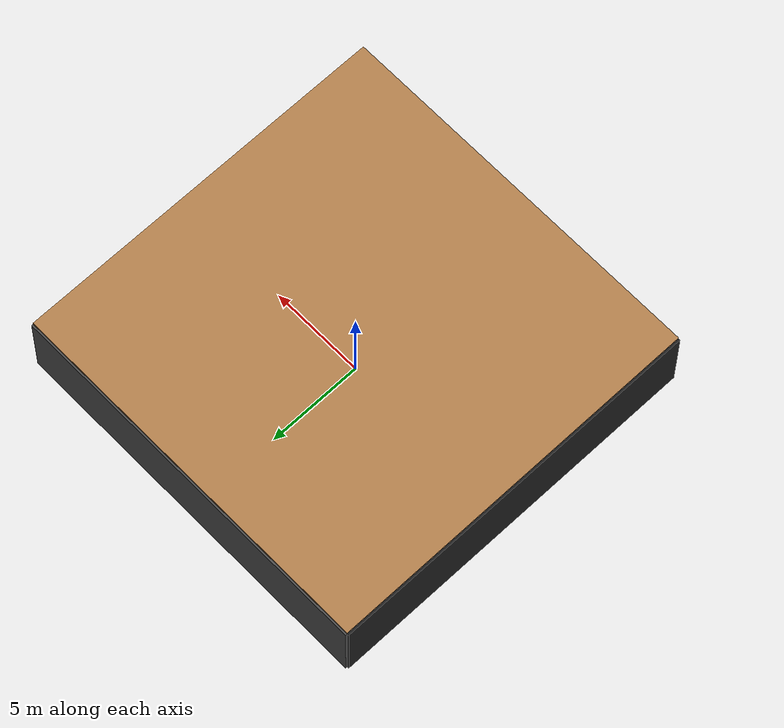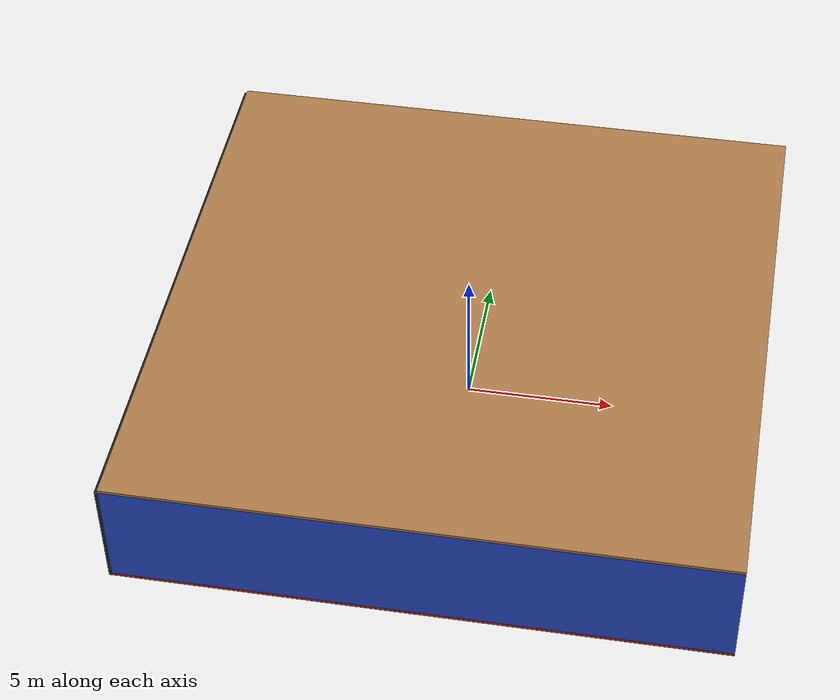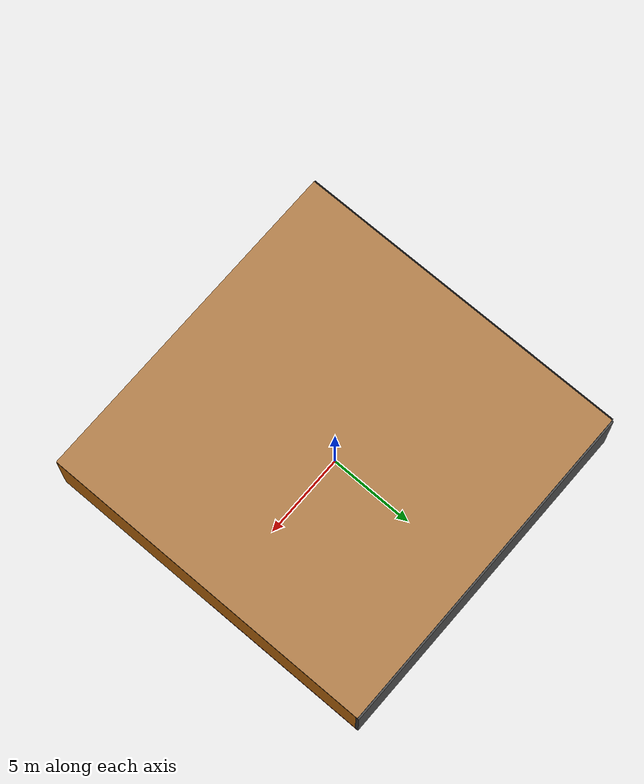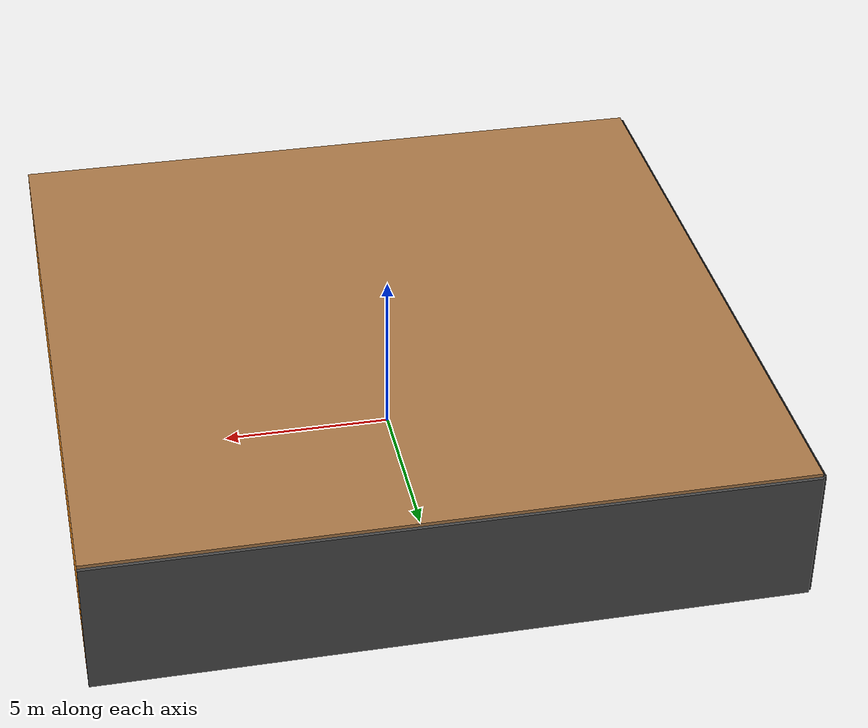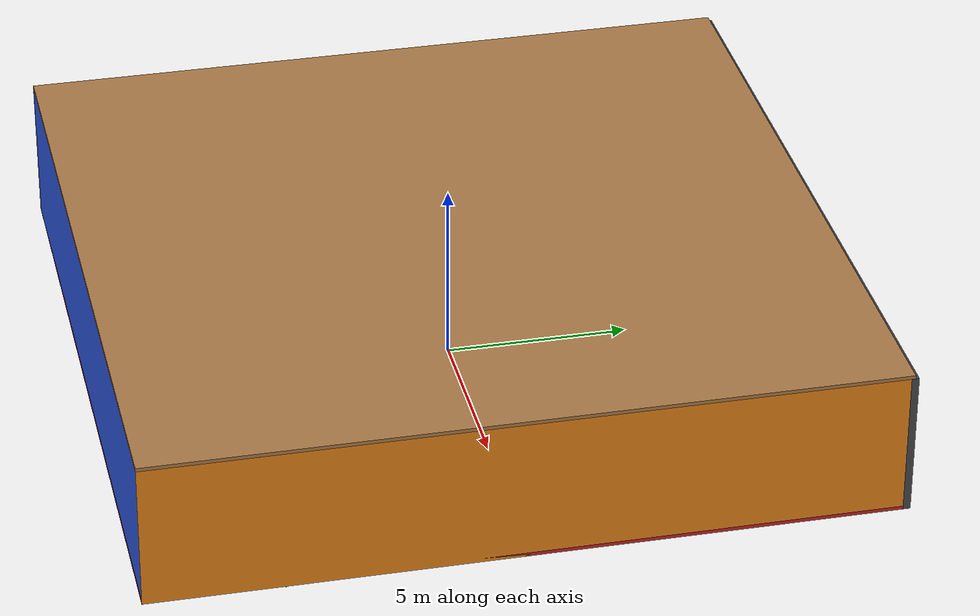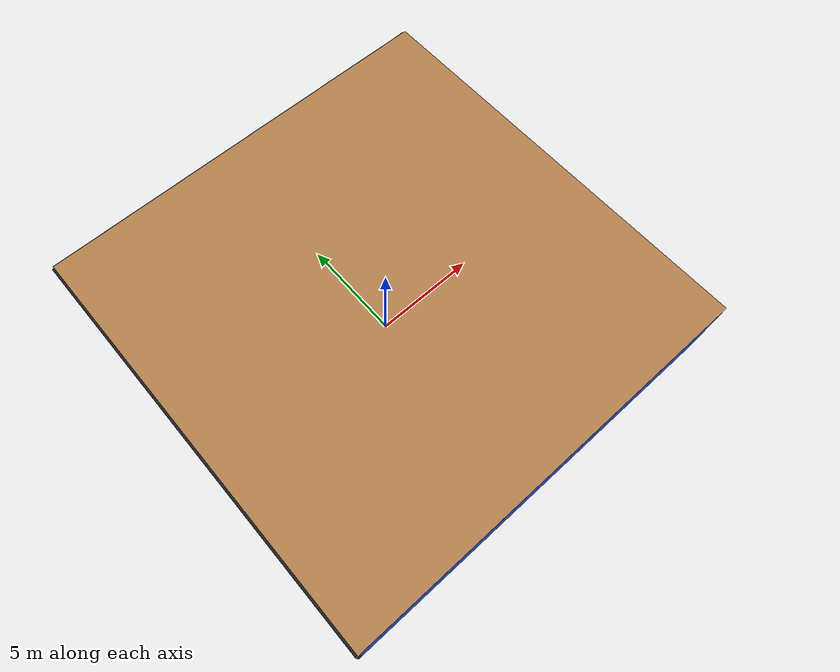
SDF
<sdf version="1.4">
 <world name="default">
  <physics type="ode">
   <max_step_size>0.001</max_step_size>
   <real_time_factor>1</real_time_factor>
   <real_time_update_rate>1000</real_time_update_rate>
   <gravity>0 0 -9.8</gravity>
  </physics>
  <scene><ambient>0.4 0.4 0.4 1</ambient><background>0.7 0.7 0.7 1</background><shadows>1</shadows></scene>
  <model name="Surrounding">
   <static>1</static>
   <link name="Ceiling">
    <collision name="Ceiling_Collision"><geometry><box><size>20 20 0.1</size></box></geometry></collision>
    <visual name="Ceiling_Visual">
     <geometry><box><size>20 20 0.1</size></box></geometry>
     <material>
      <script><uri>file://media/materials/scripts/gazebo.material</uri><name>Gazebo/WoodFloor</name></script>
     </material>
    </visual>
    <pose>0 0 4.05 0 0 0</pose>
   </link>
   <link name="Wall_South">
    <collision name="Wall_South_Collision">
     <geometry><box><size>20 0 4</size></box></geometry>
     <pose>0 0 2 0 -0 0</pose>
    </collision>
    <visual name="Wall_South_Visual">
     <pose>0 0 2 0 -0 0</pose>
     <geometry><box><size>20 0 4</size></box></geometry>
     <material>
      <script><uri>file://media/materials/scripts/gazebo.material</uri><name>Gazebo/Blue</name></script>
     </material>
    </visual>
    <velocity_decay><linear>0</linear><angular>0</angular></velocity_decay>
    <pose>0 -10 0 0 -0 0</pose>
   </link>
   <link name="Wall_East">
    <collision name="Wall_21_Collision">
     <geometry><box><size>20 0 4</size></box></geometry>
     <pose>0 0 2 0 -0 0</pose>
    </collision>
    <visual name="Wall_21_Visual">
     <pose>0 0 2 0 -0 0</pose>
     <geometry><box><size>20 0 4</size></box></geometry>
     <material>
      <script><uri>file://media/materials/scripts/gazebo.material</uri><name>Gazebo/Orange</name></script>
     </material>
    </visual>
    <velocity_decay><linear>0</linear><angular>0</angular></velocity_decay>
    <pose>10 0 0 0 -0 1.5708</pose>
   </link>
   <link name="Wall_North">
    <collision name="Wall_22_Collision">
     <geometry><box><size>20 0.2 4</size></box></geometry>
     <pose>0 0 2 0 -0 0</pose>
    </collision>
    <visual name="Wall_22_Visual">
     <pose>0 0 2 0 -0 0</pose>
     <geometry><box><size>20 0.2 4</size></box></geometry>
     <material>
      <script><uri>file://media/materials/scripts/gazebo.material</uri><name>Gazebo/DarkGrey</name></script>
     </material>
    </visual>
    <velocity_decay><linear>0</linear><angular>0</angular></velocity_decay>
    <pose>0 10 0 0 -0 0</pose>
   </link>
   <link name="Wall_West">
    <collision name="Wall_23_Collision">
     <geometry><box><size>20 0.2 4</size></box></geometry>
     <pose>0 0 2 0 -0 0</pose>
    </collision>
    <visual name="Wall_23_Visual">
     <pose>0 0 2 0 -0 0</pose>
     <geometry><box><size>20 0.2 4</size></box></geometry>
     <material>
      <script><uri>file://media/materials/scripts/gazebo.material</uri><name>Gazebo/Black</name></script>
     </material>
    </visual>
    <velocity_decay><linear>0</linear><angular>0</angular></velocity_decay>
    <pose>-10 0 0 0 0 -1.5708</pose>
   </link>
   <link name="Ground_link">
    <collision name="collision">
     <pose>0 0 .05 0 -0 0</pose>
     <geometry><box><size>20 20 0.1</size></box></geometry>
    </collision>
    <visual name="visual">
     <pose>0 0 .05 0 -0 0</pose>
     <geometry><box><size>20 20 0.1</size></box></geometry>
     <material>
      <script><uri>file://media/materials/scripts/gazebo.material</uri><name>Gazebo/Red</name></script>
     </material>
    </visual>
   </link>
   <static>1</static>
  </model>
  <spherical_coordinates>
   <surface_model>EARTH_WGS84</surface_model>
   <latitude_deg>0</latitude_deg>
   <longitude_deg>0</longitude_deg>
   <elevation>0</elevation>
   <heading_deg>0</heading_deg>
  </spherical_coordinates>
  <light name="lightball_0" type="diffuse">
   <diffuse>0.8 0.8 0.8 1</diffuse>
   <specular>0.2 0.2 0.2 1</specular>
   <attenuation>
    <range>100</range>
    <constant>0.7</constant>
    <linear>0.01</linear>
    <quadratic>0.001</quadratic>
   </attenuation>
   <direction>-0.5 0.1 -0.9</direction>
   <pose>-0.214414283674 5.17195428512 1.67020437657 0 0 0</pose>
  </light>
  <light name="lightball_1" type="diffuse">
   <diffuse>0.8 0.8 0.8 1</diffuse>
   <specular>0.2 0.2 0.2 1</specular>
   <attenuation>
    <range>100</range>
    <constant>0.7</constant>
    <linear>0.01</linear>
    <quadratic>0.001</quadratic>
   </attenuation>
   <direction>-0.5 0.1 -0.9</direction>
   <pose>3.31927515725 0.861083448113 3.54040568212 0 0 0</pose>
  </light>
  <light name="lightball_2" type="diffuse">
   <diffuse>0.8 0.8 0.8 1</diffuse>
   <specular>0.2 0.2 0.2 1</specular>
   <attenuation>
    <range>100</range>
    <constant>0.7</constant>
    <linear>0.01</linear>
    <quadratic>0.001</quadratic>
   </attenuation>
   <direction>-0.5 0.1 -0.9</direction>
   <pose>4.47503132208 1.5937745179 1.27928668624 0 0 0</pose>
  </light>
  <light name="lightball_3" type="diffuse">
   <diffuse>0.8 0.8 0.8 1</diffuse>
   <specular>0.2 0.2 0.2 1</specular>
   <attenuation>
    <range>100</range>
    <constant>0.7</constant>
    <linear>0.01</linear>
    <quadratic>0.001</quadratic>
   </attenuation>
   <direction>-0.5 0.1 -0.9</direction>
   <pose>-1.01576601872 4.48814140585 3.15179310358 0 0 0</pose>
  </light>
  <light name="lightball_4" type="diffuse">
   <diffuse>0.8 0.8 0.8 1</diffuse>
   <specular>0.2 0.2 0.2 1</specular>
   <attenuation>
    <range>100</range>
    <constant>0.7</constant>
    <linear>0.01</linear>
    <quadratic>0.001</quadratic>
   </attenuation>
   <direction>-0.5 0.1 -0.9</direction>
   <pose>-5.95229937816 -6.19832714674 3.14249844482 0 0 0</pose>
  </light>
  <light name="lightball_5" type="diffuse">
   <diffuse>0.8 0.8 0.8 1</diffuse>
   <specular>0.2 0.2 0.2 1</specular>
   <attenuation>
    <range>100</range>
    <constant>0.7</constant>
    <linear>0.01</linear>
    <quadratic>0.001</quadratic>
   </attenuation>
   <direction>-0.5 0.1 -0.9</direction>
   <pose>9.50371897226 3.86306515236 3.87303906417 0 0 0</pose>
  </light>
  <light name="lightball_6" type="diffuse">
   <diffuse>0.8 0.8 0.8 1</diffuse>
   <specular>0.2 0.2 0.2 1</specular>
   <attenuation>
    <range>100</range>
    <constant>0.7</constant>
    <linear>0.01</linear>
    <quadratic>0.001</quadratic>
   </attenuation>
   <direction>-0.5 0.1 -0.9</direction>
   <pose>-0.718975964407 9.41170265719 1.2328996415 0 0 0</pose>
  </light>
  <light name="lightball_7" type="diffuse">
   <diffuse>0.8 0.8 0.8 1</diffuse>
   <specular>0.2 0.2 0.2 1</specular>
   <attenuation>
    <range>100</range>
    <constant>0.7</constant>
    <linear>0.01</linear>
    <quadratic>0.001</quadratic>
   </attenuation>
   <direction>-0.5 0.1 -0.9</direction>
   <pose>1.96439593247 4.80362538048 0.695319734818 0 0 0</pose>
  </light>
  <light name="lightball_8" type="diffuse">
   <diffuse>0.8 0.8 0.8 1</diffuse>
   <specular>0.2 0.2 0.2 1</specular>
   <attenuation>
    <range>100</range>
    <constant>0.7</constant>
    <linear>0.01</linear>
    <quadratic>0.001</quadratic>
   </attenuation>
   <direction>-0.5 0.1 -0.9</direction>
   <pose>-2.57623118128 2.74009937955 0.925231410604 0 0 0</pose>
  </light>
  <include>
   <uri>model://construction_cone</uri>
   <pose>-7.4382940566 -7.07009919965 0 0 0 2.35121326591</pose>
  </include>
  <include><uri>model://cabinet</uri><pose>-7.10239535886 -3.7144037364 0 0 0 1.28734614238</pose></include>
  <include><uri>model://cabinet</uri><pose>-6.96416452628 7.64255149538 0 0 0 0.958033533854</pose></include>
  <include>
   <uri>model://textured_shapes</uri>
   <pose>-4.34770725939 2.12115791959 0 0 0 1.04969073387</pose>
  </include>
  <include>
   <uri>model://robocup_3Dsim_goal</uri>
   <pose>5.25937338655 1.08509113227 0 0 0 1.90756181428</pose>
  </include>
  <include>
   <uri>model://textured_shapes</uri>
   <pose>7.62407460038 -5.09344807766 0 0 0 0.746683853103</pose>
  </include>
  <include>
   <uri>model://construction_cone</uri>
   <pose>7.02095108934 -1.02234655823 0 0 0 1.26103622007</pose>
  </include>
 </world>
</sdf>

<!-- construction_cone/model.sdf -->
<sdf version="1.5">
  <model name="Construction Cone">
    <link name="link">
      <collision name="collision">
        <geometry>
          <mesh>
            <scale>10 10 10</scale>
            <uri>file://isr-testbed/construction_cone/meshes/construction_cone.dae</uri>
          </mesh>
        </geometry>
      </collision>
      <visual name="visual">
        <geometry>
          <mesh>
            <scale>10 10 10</scale>
            <uri>file://isr-testbed/construction_cone/meshes/construction_cone.dae</uri>
          </mesh>
        </geometry>
      </visual>
    </link>
  </model>
</sdf>

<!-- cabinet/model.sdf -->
<sdf version="1.5">
  <model name="cabinet">
    <static>true</static>
    <link name="cabinet_bottom_plate">
      <inertial>
        <pose>0 0 -1 0 0 0</pose>
        <inertia>
          <ixx>2.050000</ixx>
          <ixy>0</ixy>
          <ixz>0</ixz>
          <iyy>2.050000</iyy>
          <iyz>0</iyz>
          <izz>2.050000</izz>
        </inertia>
        <mass>25.000000</mass>
      </inertial>
      <collision name="cabinet_bottom_plate_geom">
        <pose>0 0 0.010000 0 0 0</pose>
        <geometry>
          <box>
            <size>0.450000 0.450000 0.020000</size>
          </box>
        </geometry>
      </collision>
      <visual name="cabinet_bottom_plate_geom_visual">
        <pose>0 0 0.010000 0 0 0</pose>
        <geometry>
          <box>
            <size>0.450000 0.450000 0.020000</size>
          </box>
        </geometry>
        <material>
          <script>
            <uri>model://media/materials/scripts/gazebo.material</uri>
            <name>Gazebo/Wood</name>
          </script>
        </material>
      </visual>
      <collision name="cabinet_bottom_plate_geom_cabinet_back_plate">
        <pose>0.235000 0 0.510000 0 0 0</pose>
        <geometry>
          <box>
            <size>0.020000 0.450000 1.020000</size>
          </box>
        </geometry>
      </collision>
      <visual name="cabinet_bottom_plate_geom_cabinet_back_plate_visual">
        <pose>0.235000 0 0.510000 0 0 0</pose>
        <geometry>
          <box>
            <size>0.020000 0.450000 1.020000</size>
          </box>
        </geometry>
        <material>
          <script>
            <uri>model://media/materials/scripts/gazebo.material</uri>
            <name>Gazebo/Wood</name>
          </script>
        </material>
      </visual>
      <collision name="cabinet_bottom_plate_geom_cabinet_left_plate">
        <pose>0 0.235000 0.510000 0 0 0</pose>
        <geometry>
          <box>
            <size>0.450000 0.020000 1.020000</size>
          </box>
        </geometry>
      </collision>
      <visual name="cabinet_bottom_plate_geom_cabinet_left_plate_visual">
        <pose>0 0.235000 0.510000 0 0 0</pose>
        <geometry>
          <box>
            <size>0.450000 0.020000 1.020000</size>
          </box>
        </geometry>
        <material>
          <script>
            <uri>model://media/materials/scripts/gazebo.material</uri>
            <name>Gazebo/Wood</name>
          </script>
        </material>
      </visual>
      <collision name="cabinet_bottom_plate_geom_cabinet_middle_plate">
        <pose>0 0 0.510000 0 0 0</pose>
        <geometry>
          <box>
            <size>0.450000 0.450000 0.020000</size>
          </box>
        </geometry>
      </collision>
      <visual name="cabinet_bottom_plate_geom_cabinet_middle_plate_visual">
        <pose>0 0 0.510000 0 0 0</pose>
        <geometry>
          <box>
            <size>0.450000 0.450000 0.020000</size>
          </box>
        </geometry>
        <material>
          <script>
            <uri>model://media/materials/scripts/gazebo.material</uri>
            <name>Gazebo/Wood</name>
          </script>
        </material>
      </visual>
      <collision name="cabinet_bottom_plate_geom_cabinet_right_plate">
        <pose>0 -0.235000 0.510000 0 0 0</pose>
        <geometry>
          <box>
            <size>0.450000 0.020000 1.020000</size>
          </box>
        </geometry>
      </collision>
      <visual name="cabinet_bottom_plate_geom_cabinet_right_plate_visual">
        <pose>0 -0.235000 0.510000 0 0 0</pose>
        <geometry>
          <box>
            <size>0.450000 0.020000 1.020000</size>
          </box>
        </geometry>
        <material>
          <script>
            <uri>model://media/materials/scripts/gazebo.material</uri>
            <name>Gazebo/Wood</name>
          </script>
        </material>
      </visual>
      <collision name="cabinet_bottom_plate_geom_cabinet_top_plate">
        <pose>0 0 1.010000 0 0 0</pose>
        <geometry>
          <box>
            <size>0.450000 0.450000 0.020000</size>
          </box>
        </geometry>
      </collision>
      <visual name="cabinet_bottom_plate_geom_cabinet_top_plate_visual">
        <pose>0 0 1.010000 0 0 0</pose>
        <geometry>
          <box>
            <size>0.450000 0.450000 0.020000</size>
          </box>
        </geometry>
        <material>
          <script>
            <uri>model://media/materials/scripts/gazebo.material</uri>
            <name>Gazebo/Wood</name>
          </script>
        </material>
      </visual>
    </link>
  </model>
</sdf>

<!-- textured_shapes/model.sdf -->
<sdf version="1.6">
  <model name="textured_shapes">
    <pose>0 0 0.5 0 0 0</pose>
    <link name="box">
      <pose>0 -1.5 0 0 0 0</pose>
      <collision name="collision">
        <geometry>
          <box>
            <size>1 1 1</size>
          </box>
        </geometry>
      </collision>
      <visual name="visual">
        <geometry>
          <box>
            <size>1 1 1</size>
          </box>
        </geometry>
        <material>
          <script>
            <uri>model://../model_source/models/textured_shapes/materials/scripts</uri>
            <uri>model://../model_source/models/textured_shapes/materials/textures</uri>
            <name>TexturedShape/Squares</name>
          </script>
        </material>
      </visual>
    </link>
    <link name="sphere">
      <collision name="collision">
        <geometry>
          <sphere>
            <radius>0.5</radius>
          </sphere>
        </geometry>
      </collision>
      <visual name="visual">
        <geometry>
          <sphere>
            <radius>0.5</radius>
          </sphere>
        </geometry>
        <material>
          <script>
            <uri>model://../model_source/models/textured_shapes/materials/scripts</uri>
            <uri>model://../model_source/models/textured_shapes/materials/textures</uri>
            <name>TexturedShape/Squares</name>
          </script>
        </material>
      </visual>
    </link>
    <link name="cylinder">
      <pose>0 1.5 0 0 0 0</pose>
      <collision name="collision">
        <geometry>
          <cylinder>
            <radius>0.5</radius>
            <length>1</length>
          </cylinder>
        </geometry>
      </collision>
      <visual name="visual">
        <geometry>
          <cylinder>
            <radius>0.5</radius>
            <length>1</length>
          </cylinder>
        </geometry>
        <material>
          <script>
            <uri>model://../model_source/models/textured_shapes/materials/scripts</uri>
            <uri>model://../model_source/models/textured_shapes/materials/textures</uri>
            <name>TexturedShape/Squares</name>
          </script>
        </material>
      </visual>
    </link>
  </model>
</sdf>

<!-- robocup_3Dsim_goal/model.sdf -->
<sdf version="1.5">
  <model name="robocup_3d_goal">
    <static>true</static>
    <link name="left_post">
      <pose>0 1.05 0.45 0 0 0</pose>
      <collision name="collision">
        <geometry>
          <cylinder>
            <radius>0.05</radius>
            <length>0.9</length>
          </cylinder>
        </geometry>
      </collision>
      <visual name="visual">
        <geometry>
          <cylinder>
            <radius>0.05</radius>
            <length>0.9</length>
          </cylinder>
        </geometry>
        <material>
          <script>
            <uri>file://media/materials/scripts/gazebo.material</uri>
            <name>Gazebo/ZincYellow</name>
          </script>
        </material>
      </visual>
    </link>
    <link name="left_support_horiz_lower">
      <pose>0.30 1.05 0.01 0 0 0</pose>
      <collision name="collision">
        <geometry>
          <box>
            <size>0.50 0.02 0.02</size>
          </box>
        </geometry>
      </collision>
      <visual name="visual">
        <geometry>
          <box>
            <size>0.50 0.02 0.02</size>
          </box>
        </geometry>
        <material>
          <script>
            <uri>file://media/materials/scripts/gazebo.material</uri>
            <name>Gazebo/White</name>
          </script>
        </material>
      </visual>
    </link>
    <link name="left_support_horiz_upper">
      <pose>0.30 1.05 0.79 0 0 0</pose>
      <collision name="collision">
        <geometry>
          <box>
            <size>0.50 0.02 0.02</size>
          </box>
        </geometry>
      </collision>
      <visual name="visual">
        <geometry>
          <box>
            <size>0.50 0.02 0.02</size>
          </box>
        </geometry>
        <material>
          <script>
            <uri>file://media/materials/scripts/gazebo.material</uri>
            <name>Gazebo/White</name>
          </script>
        </material>
      </visual>
    </link>
    <link name="left_support_vertical">
      <pose>0.56 1.05 0.4 0 1.5708 0</pose>
      <collision name="collision">
        <geometry>
          <box>
            <size>0.80 0.02 0.02</size>
          </box>
        </geometry>
      </collision>
      <visual name="visual">
        <geometry>
          <box>
            <size>0.80 0.02 0.02</size>
          </box>
        </geometry>
        <material>
          <script>
            <uri>file://media/materials/scripts/gazebo.material</uri>
            <name>Gazebo/White</name>
          </script>
        </material>
      </visual>
    </link>
    <link name="right_support_horiz_lower">
      <pose>0.30 -1.05 0.01 0 0 0</pose>
      <collision name="collision">
        <geometry>
          <box>
            <size>0.50 0.02 0.02</size>
          </box>
        </geometry>
      </collision>
      <visual name="visual">
        <geometry>
          <box>
            <size>0.50 0.02 0.02</size>
          </box>
        </geometry>
        <material>
          <script>
            <uri>file://media/materials/scripts/gazebo.material</uri>
            <name>Gazebo/White</name>
          </script>
        </material>
      </visual>
    </link>
    <link name="right_support_horiz_upper">
      <pose>0.30 -1.05 0.79 0 0 0</pose>
      <collision name="collision">
        <geometry>
          <box>
            <size>0.50 0.02 0.02</size>
          </box>
        </geometry>
      </collision>
      <visual name="visual">
        <geometry>
          <box>
            <size>0.50 0.02 0.02</size>
          </box>
        </geometry>
        <material>
          <script>
            <uri>file://media/materials/scripts/gazebo.material</uri>
            <name>Gazebo/White</name>
          </script>
        </material>
      </visual>
    </link>
    <link name="right_support_vertical">
      <pose>0.56 -1.05 0.4 0 1.5708 0</pose>
      <collision name="collision">
        <geometry>
          <box>
            <size>0.80 0.02 0.02</size>
          </box>
        </geometry>
      </collision>
      <visual name="visual">
        <geometry>
          <box>
            <size>0.80 0.02 0.02</size>
          </box>
        </geometry>
        <material>
          <script>
            <uri>file://media/materials/scripts/gazebo.material</uri>
            <name>Gazebo/White</name>
          </script>
        </material>
      </visual>
    </link>
    <link name="center_support_horiz_lower">
      <pose>0.56 0 0.01 0 1.5708 0</pose>
      <collision name="collision">
        <geometry>
          <box>
            <size>0.02 2.08 0.02</size>
          </box>
        </geometry>
      </collision>
      <visual name="visual">
        <geometry>
          <box>
            <size>0.02 2.08 0.02</size>
          </box>
        </geometry>
        <material>
          <script>
            <uri>file://media/materials/scripts/gazebo.material</uri>
            <name>Gazebo/White</name>
          </script>
        </material>
      </visual>
    </link>
    <link name="center_support_horiz_upper">
      <pose>0.56 0 0.79 0 1.5708 0</pose>
      <collision name="collision">
        <geometry>
          <box>
            <size>0.02 2.08 0.02</size>
          </box>
        </geometry>
      </collision>
      <visual name="visual">
        <geometry>
          <box>
            <size>0.02 2.08 0.02</size>
          </box>
        </geometry>
        <material>
          <script>
            <uri>file://media/materials/scripts/gazebo.material</uri>
            <name>Gazebo/White</name>
          </script>
        </material>
      </visual>
    </link>
    <link name="right_post">
      <pose>0 -1.05 0.45 0 0 0</pose>
      <collision name="collision">
        <geometry>
          <cylinder>
            <radius>0.05</radius>
            <length>0.9</length>
          </cylinder>
        </geometry>
      </collision>
      <visual name="visual">
        <geometry>
          <cylinder>
            <radius>0.05</radius>
            <length>0.9</length>
          </cylinder>
        </geometry>
        <material>
          <script>
            <uri>file://media/materials/scripts/gazebo.material</uri>
            <name>Gazebo/ZincYellow</name>
          </script>
        </material>
      </visual>
    </link>
    <link name="crossbar">
      <pose>0 0 0.85 1.57 1.57 0</pose>
      <collision name="collision">
        <geometry>
          <cylinder>
            <radius>0.05</radius>
            <length>2.0</length>
          </cylinder>
        </geometry>
      </collision>
      <visual name="visual">
        <geometry>
          <cylinder>
            <radius>0.05</radius>
            <length>2.0</length>
          </cylinder>
        </geometry>
        <material>
          <script>
            <uri>file://media/materials/scripts/gazebo.material</uri>
            <name>Gazebo/ZincYellow</name>
          </script>
        </material>
      </visual>
    </link>
    <link name="center_net">
      <pose>0.56 0 0.40 0 0 0</pose>
      <collision name="collision">
        <geometry>
          <box>
            <size>0.01 2.1 0.80</size>
          </box>
        </geometry>
      </collision>
      <visual name="visual">
        <geometry>
          <box>
            <size>0.01 2.1 0.80</size>
          </box>
        </geometry>
        <material>
          <script>
            <uri>model://../model_source/models/robocup09_spl_field/materials/scripts/</uri>
            <uri>model://../model_source/models/robocup09_spl_field/materials/textures/</uri>
            <name>RoboCup/Net</name>
          </script>
        </material>
      </visual>
    </link>
    <link name="left_net">
      <pose>0.30 1.05 0.40 0 0 0</pose>
      <collision name="collision">
        <geometry>
          <box>
            <size>0.50 0.01 0.76</size>
          </box>
        </geometry>
      </collision>
      <visual name="visual">
        <geometry>
          <box>
            <size>0.50 0.01 0.76</size>
          </box>
        </geometry>
        <material>
          <script>
            <uri>model://../model_source/models/robocup09_spl_field/materials/scripts/</uri>
            <uri>model://../model_source/models/robocup09_spl_field/materials/textures/</uri>
            <name>RoboCup/Net</name>
          </script>
        </material>
      </visual>
    </link>
    <link name="right_net">
      <pose>0.30 -1.05 0.40 0 0 0</pose>
      <collision name="collision">
        <geometry>
          <box>
            <size>0.50 0.01 0.76</size>
          </box>
        </geometry>
      </collision>
      <visual name="visual">
        <geometry>
          <box>
            <size>0.50 0.01 0.76</size>
          </box>
        </geometry>
        <material>
          <script>
            <uri>model://../model_source/models/robocup09_spl_field/materials/scripts/</uri>
            <uri>model://../model_source/models/robocup09_spl_field/materials/textures/</uri>
            <name>RoboCup/Net</name>
          </script>
        </material>
      </visual>
    </link>
  </model>
</sdf>
